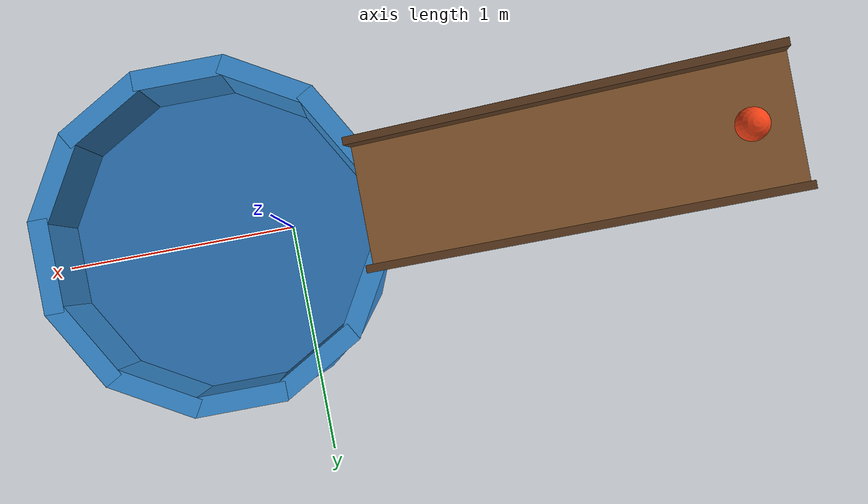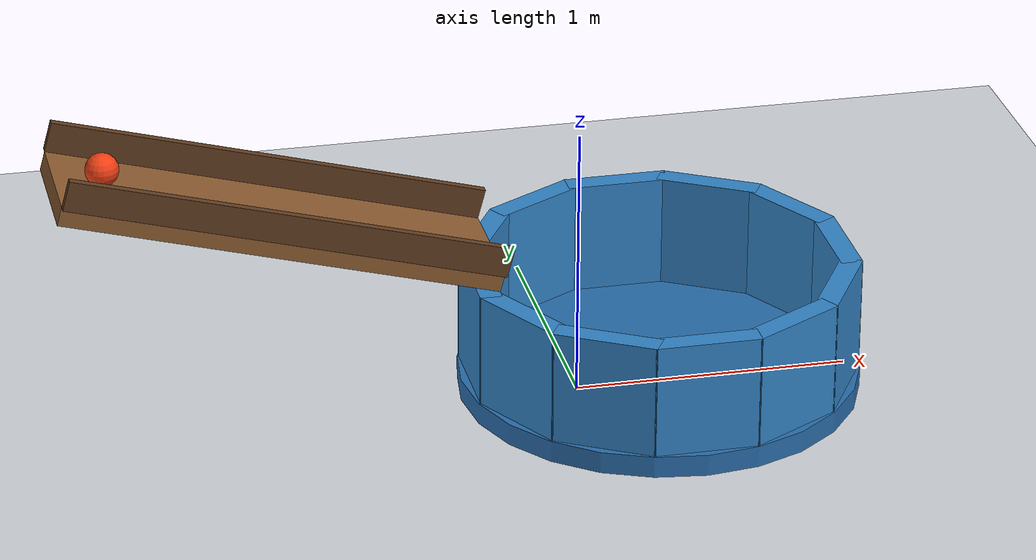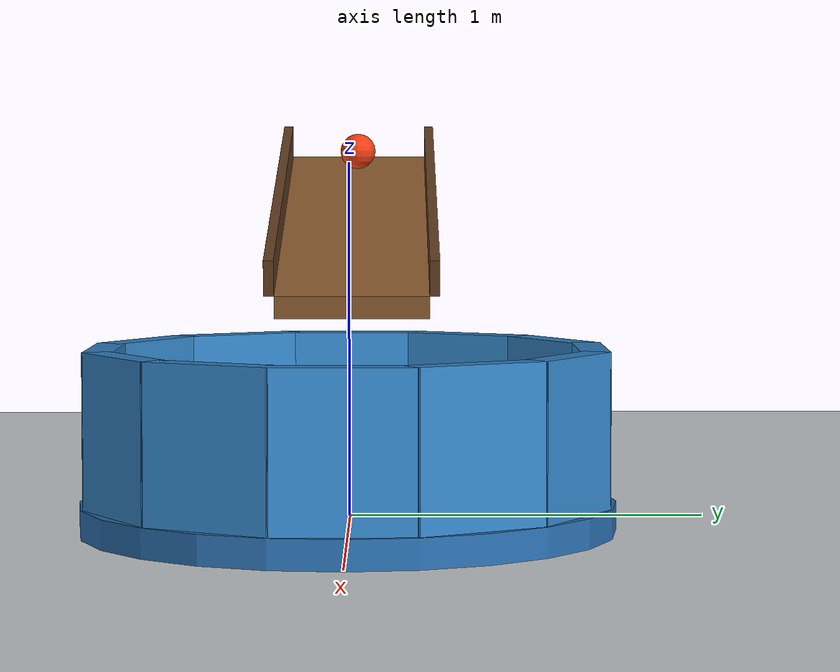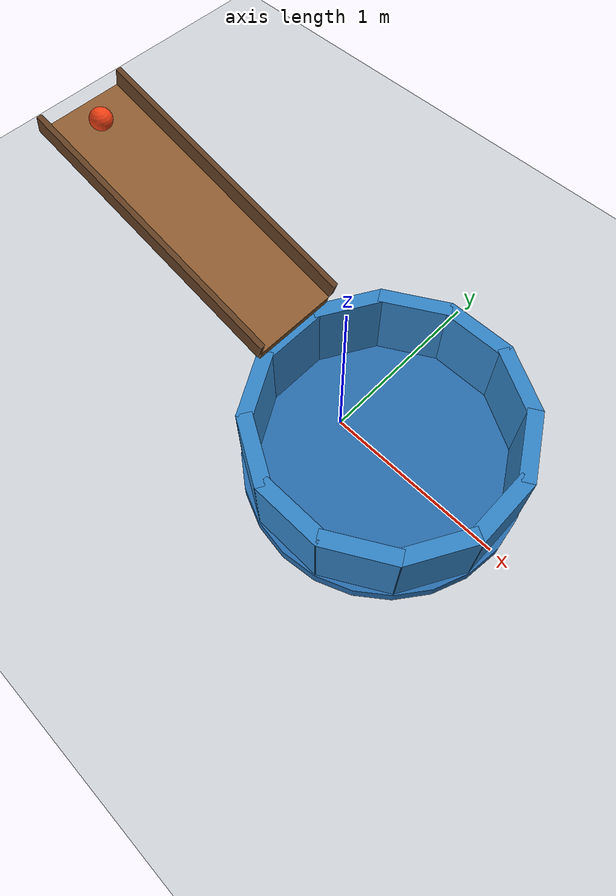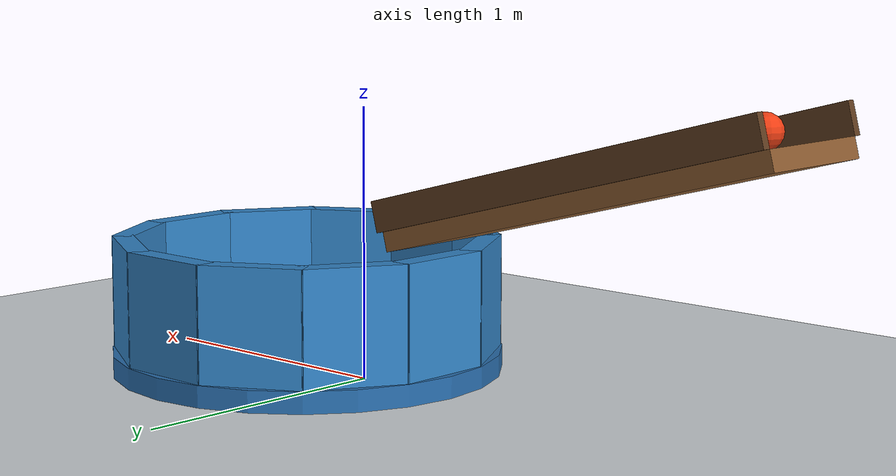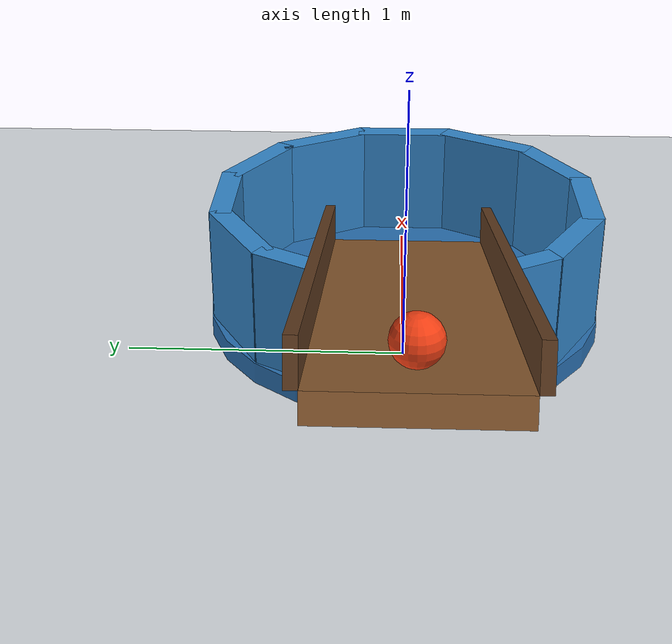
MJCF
<mujoco model="ball_ramp_and_cup">
  <compiler angle="degree"/>
  <option timestep="0.002" gravity="0 0 -9.81" integrator="implicitfast" cone="elliptic" iterations="80"/>

  <worldbody>
    <light name="overhead" pos="-1 -2 4" dir="0.2 0.3 -1" diffuse="0.8 0.8 0.8"/>
    <geom name="floor" type="plane" pos="0 0 0" size="4 3 0.1" rgba="0.82 0.84 0.86 1" friction="0.8 0.01 0.005" condim="6"/>

    <body name="ramp" pos="-1.1 0 0.78" axisangle="0 1 0 15">
      <geom name="ramp_deck" type="box" size="0.8 0.23 0.035" rgba="0.55 0.36 0.19 1" friction="0.8 0.005 0.001" condim="6"/>
      <geom name="ramp_rail_left" type="box" pos="0 0.245 0.09" size="0.8 0.015 0.055" rgba="0.38 0.24 0.13 1" friction="0.8 0.005 0.001" condim="6"/>
      <geom name="ramp_rail_right" type="box" pos="0 -0.245 0.09" size="0.8 0.015 0.055" rgba="0.38 0.24 0.13 1" friction="0.8 0.005 0.001" condim="6"/>
    </body>

    <body name="cup" pos="0.3 0 0">
      <geom name="cup_bottom" type="cylinder" pos="0 0 0.04" size="0.73 0.04" rgba="0.16 0.43 0.68 1" friction="1 0.03 0.015" condim="6"/>
      <geom name="cup_wall_00" type="box" pos="0.66 0 0.29" euler="0 0 0" size="0.04 0.19 0.21" rgba="0.20 0.52 0.78 1" friction="1 0.03 0.015" condim="6"/>
      <geom name="cup_wall_01" type="box" pos="0.571577 0.33 0.29" euler="0 0 30" size="0.04 0.19 0.21" rgba="0.20 0.52 0.78 1" friction="1 0.03 0.015" condim="6"/>
      <geom name="cup_wall_02" type="box" pos="0.33 0.571577 0.29" euler="0 0 60" size="0.04 0.19 0.21" rgba="0.20 0.52 0.78 1" friction="1 0.03 0.015" condim="6"/>
      <geom name="cup_wall_03" type="box" pos="0 0.66 0.29" euler="0 0 90" size="0.04 0.19 0.21" rgba="0.20 0.52 0.78 1" friction="1 0.03 0.015" condim="6"/>
      <geom name="cup_wall_04" type="box" pos="-0.33 0.571577 0.29" euler="0 0 120" size="0.04 0.19 0.21" rgba="0.20 0.52 0.78 1" friction="1 0.03 0.015" condim="6"/>
      <geom name="cup_wall_05" type="box" pos="-0.571577 0.33 0.29" euler="0 0 150" size="0.04 0.19 0.21" rgba="0.20 0.52 0.78 1" friction="1 0.03 0.015" condim="6"/>
      <geom name="cup_wall_06" type="box" pos="-0.66 0 0.29" euler="0 0 180" size="0.04 0.19 0.21" rgba="0.20 0.52 0.78 1" friction="1 0.03 0.015" condim="6"/>
      <geom name="cup_wall_07" type="box" pos="-0.571577 -0.33 0.29" euler="0 0 210" size="0.04 0.19 0.21" rgba="0.20 0.52 0.78 1" friction="1 0.03 0.015" condim="6"/>
      <geom name="cup_wall_08" type="box" pos="-0.33 -0.571577 0.29" euler="0 0 240" size="0.04 0.19 0.21" rgba="0.20 0.52 0.78 1" friction="1 0.03 0.015" condim="6"/>
      <geom name="cup_wall_09" type="box" pos="0 -0.66 0.29" euler="0 0 270" size="0.04 0.19 0.21" rgba="0.20 0.52 0.78 1" friction="1 0.03 0.015" condim="6"/>
      <geom name="cup_wall_10" type="box" pos="0.33 -0.571577 0.29" euler="0 0 300" size="0.04 0.19 0.21" rgba="0.20 0.52 0.78 1" friction="1 0.03 0.015" condim="6"/>
      <geom name="cup_wall_11" type="box" pos="0.571577 -0.33 0.29" euler="0 0 330" size="0.04 0.19 0.21" rgba="0.20 0.52 0.78 1" friction="1 0.03 0.015" condim="6"/>
    </body>

    <body name="ball" pos="-1.693604 0 1.039407">
      <freejoint/>
      <geom name="ball" type="sphere" size="0.06" mass="0.12" rgba="0.95 0.25 0.08 1" friction="0.8 0.005 0.001" condim="6" solref="0.015 1" solimp="0.9 0.95 0.001"/>
    </body>
  </worldbody>

  <keyframe>
    <key name="start" qpos="-1.693604 0 1.039407 1 0 0 0" qvel="0 0 0 0 0 0"/>
  </keyframe>
</mujoco>
